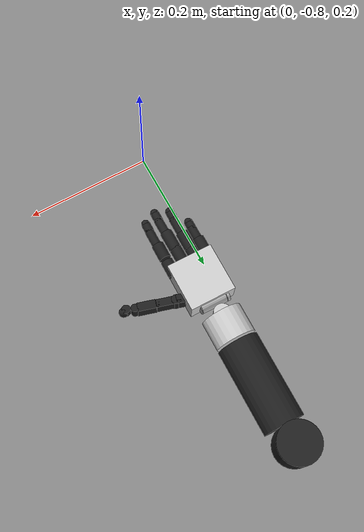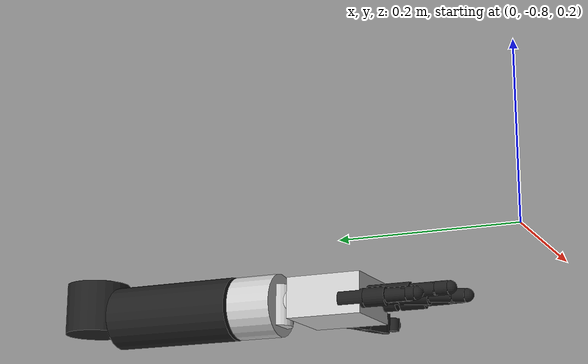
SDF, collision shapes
<?xml version='1.0'?>
<sdf version='1.5'>
  <model name='mpl_right_arm_transradial'>
    <link name='forearm'>
      <pose>0.00660504 -0.294573 0.119123 -1.21334e-13 2.77556e-17 -0.0115373</pose>
      <inertial>
        <pose>-0.000589428 -0.0733139 0.0215526 0 0 0</pose>
        <mass>0.0997005</mass>
        <inertia>
          <ixx>0.0004998</ixx>
          <ixy>-5.83136e-06</ixy>
          <ixz>3.56083e-07</ixz>
          <iyy>0.00010215</iyy>
          <iyz>3.76069e-05</iyz>
          <izz>0.000498862</izz>
        </inertia>
      </inertial>
      <collision name='collision'>
        <pose>0 0 0.02855 0 0 0</pose>
        <geometry>
          <cylinder>
            <radius>0.03567</radius>
            <length>0.0571</length>
          </cylinder>
        </geometry>
        <surface>
          <contact>
            <ode>
              <kp>100000</kp>
              <kd>10</kd>
              <max_vel>0.1</max_vel>
              <min_depth>0.0015</min_depth>
            </ode>
          </contact>
        </surface>
      </collision>
      <collision name='collision_1'>
        <pose>0 -0.10745 0.016 1.5707 0 0</pose>
        <geometry>
          <cylinder>
            <radius>0.035</radius>
            <length>0.148</length>
          </cylinder>
        </geometry>
        <surface>
          <contact>
            <ode>
              <kp>100000</kp>
              <kd>10</kd>
              <max_vel>0.1</max_vel>
              <min_depth>0.0015</min_depth>
            </ode>
          </contact>
        </surface>
      </collision>
      <visual name='visual'>
        <geometry>
          <mesh>
            <uri>model://mpl_right_arm/meshes/forearm.stl</uri>
          </mesh>
        </geometry>
        <material>
          <script>
            <name>Gazebo/FlatBlack</name>
          </script>
        </material>
      </visual>
      <sensor name='forearm_contact_sensor' type='contact'>
        <contact>
          <collision>collision</collision>
          <collision>collision_1</collision>
          <topic>~/forearm/contact</topic>
        </contact>
      </sensor>
    </link>

    <link name='wristy'>
      <pose>0.00449937 -0.479995 0.135123 -1.2164e-13 1.09079e-14 -0.0115373</pose>
      <inertial>
        <pose>-7.08369e-05 -0.0217787 -0.000286168 0 0 0</pose>
        <mass>0.0272932</mass>
        <inertia>
          <ixx>1.77029e-05</ixx>
          <ixy>7.89061e-09</ixy>
          <ixz>4.33867e-09</ixz>
          <iyy>2.46772e-05</iyy>
          <iyz>1.77331e-07</iyz>
          <izz>1.7112e-05</izz>
        </inertia>
      </inertial>
      <collision name='collision'>
        <pose>0 -0.025 0 1.5707 0 0</pose>
        <geometry>
          <cylinder>
            <radius>0.03447</radius>
            <length>0.05</length>
          </cylinder>
        </geometry>
        <surface>
          <contact>
            <ode>
              <kp>100000</kp>
              <kd>10</kd>
              <max_vel>0.1</max_vel>
              <min_depth>0.0015</min_depth>
            </ode>
          </contact>
        </surface>
      </collision>
      <visual name='visual'>
        <geometry>
          <mesh>
            <uri>model://mpl_right_arm/meshes/wristy.stl</uri>
          </mesh>
        </geometry>
        <material>
          <ambient>0.2 0.2 0.2 1</ambient>
          <diffuse>0.8 0.8 0.8 1</diffuse>
          <specular>0.9 0.9 0.9 1</specular>
        </material>
      </visual>
      <sensor name='wristy_contact_sensor' type='contact'>
        <contact>
          <collision>collision</collision>
          <topic>~/wristy/contact</topic>
        </contact>
      </sensor>
    </link>

    <link name='wristx'>
      <pose>0.003916 -0.527636 0.137161 -1.18962e-13 1.21847e-14 -0.0115373</pose>
      <inertial>
        <pose>0.00139174 -0.00975189 -0.00252668 0 0 0</pose>
        <mass>0.010691</mass>
        <inertia>
          <ixx>3.27995e-06</ixx>
          <ixy>-1.50151e-07</ixy>
          <ixz>5.11904e-09</ixz>
          <iyy>4.22942e-06</iyy>
          <iyz>-4.20007e-08</iyz>
          <izz>5.04229e-06</izz>
        </inertia>
      </inertial>
      <collision name='collision'>
        <pose>0 0 -0.00314 0 0 0</pose>
        <geometry>
          <cylinder>
            <radius>0.01473</radius>
            <length>0.04478</length>
          </cylinder>
        </geometry>
        <surface>
          <contact>
            <ode>
              <kp>100000</kp>
              <kd>10</kd>
              <max_vel>0.1</max_vel>
              <min_depth>0.0015</min_depth>
            </ode>
          </contact>
        </surface>
      </collision>
      <collision name='collision_1'>
        <pose>0.02360 -0.02969 -0.00240 0 1.5707 0</pose>
        <geometry>
          <cylinder>
            <radius>0.013175</radius>
            <length>0.005</length>
          </cylinder>
        </geometry>
        <surface>
          <contact>
            <ode>
              <kp>100000</kp>
              <kd>10</kd>
              <max_vel>0.1</max_vel>
              <min_depth>0.0015</min_depth>
            </ode>
          </contact>
        </surface>
      </collision>
      <collision name='collision_2'>
        <pose>-0.02360 -0.02969 -0.00240 0 1.5707 0</pose>
        <geometry>
          <cylinder>
            <radius>0.013175</radius>
            <length>0.005</length>
          </cylinder>
        </geometry>
        <surface>
          <contact>
            <ode>
              <kp>100000</kp>
              <kd>10</kd>
              <max_vel>0.1</max_vel>
              <min_depth>0.0015</min_depth>
            </ode>
          </contact>
        </surface>
      </collision>
      <visual name='visual'>
        <geometry>
          <mesh>
            <uri>model://mpl_right_arm/meshes/wristx.stl</uri>
          </mesh>
        </geometry>
        <material>
          <ambient>0.2 0.2 0.2 1</ambient>
          <diffuse>0.8 0.8 0.8 1</diffuse>
          <specular>0.9 0.9 0.9 1</specular>
        </material>
      </visual>
      <sensor name='wristx_contact_sensor' type='contact'>
        <contact>
          <collision>collision</collision>
          <collision>collision_1</collision>
          <collision>collision_2</collision>
          <topic>~/wristx/contact</topic>
        </contact>
      </sensor>
    </link>

    <link name='wristz'>
      <pose>0.00375708 -0.557636 0.135067 -2.87105e-13 1.42109e-14 -0.0115373</pose>
      <inertial>
        <pose>0.00368152 -0.0358755 0.00265927 0 0 0</pose>
        <mass>0.125889</mass>
        <inertia>
          <ixx>8.18077e-05</ixx>
          <ixy>-9.44149e-06</ixy>
          <ixz>3.88366e-06</ixz>
          <iyy>9.81482e-05</iyy>
          <iyz>-4.84151e-08</iyz>
          <izz>0.000131783</izz>
        </inertia>
      </inertial>
      <collision name='collision'>
        <pose>0.00207 -0.00047 0.00046 1.5707 0 1.5707</pose>
        <geometry>
          <cylinder>
            <radius>0.01411</radius>
            <length>0.04482</length>
          </cylinder>
        </geometry>
        <surface>
          <contact>
            <ode>
              <kp>100000</kp>
              <kd>10</kd>
              <max_vel>0.1</max_vel>
              <min_depth>0.0015</min_depth>
            </ode>
          </contact>
        </surface>
      </collision>
      <collision name='collision_palm'>
        <pose>0.002 -0.03739 0 0 0 0</pose>
        <geometry>
          <box>
            <size>0.07928 0.08316 0.04402</size>
          </box>
        </geometry>
        <surface>
          <contact>
            <ode>
              <kp>100000</kp>
              <kd>100</kd>
              <max_vel>0.1</max_vel>
              <min_depth>0.0015</min_depth>
            </ode>
          </contact>
        </surface>
      </collision>
      <visual name='visual'>
        <geometry>
          <mesh>
            <uri>model://mpl_right_arm/meshes/wristz.stl</uri>
          </mesh>
        </geometry>
        <material>
          <ambient>0.2 0.2 0.2 1</ambient>
          <diffuse>0.8 0.8 0.8 1</diffuse>
          <specular>0.9 0.9 0.9 1</specular>
        </material>
      </visual>
      <visual name='visual_palm'>
        <pose>0.025625 0 0 1.7427e-13 8.3267e-17 -3.1876e-16</pose>
        <geometry>
          <mesh>
            <uri>model://mpl_right_arm/meshes/palm.stl</uri>
          </mesh>
        </geometry>
        <material>
          <script>
            <name>Gazebo/FlatBlack</name>
          </script>
        </material>
      </visual>
      <sensor name='palm_contact_sensor' type='contact'>
        <contact>
          <collision>collision_palm</collision>
          <topic>~/palm/contact</topic>
        </contact>
      </sensor>
    </link>

    <link name='index0'>
      <pose>0.0384854 -0.623842 0.136079 -1.14726e-13 0.174533 -0.0115373</pose>
      <inertial>
        <pose>-0.000142572 -0.00548494 0.000206145 0 0 0</pose>
        <mass>0.00295579</mass>
        <inertia>
          <ixx>4.22375e-07</ixx>
          <ixy>4.23313e-09</ixy>
          <ixz>5.00708e-10</ixz>
          <iyy>1.94048e-07</iyy>
          <iyz>-4.58697e-09</iyz>
          <izz>4.02188e-07</izz>
        </inertia>
      </inertial>
      <collision name='collision'>
        <pose>0 -0.01339 0 1.5707 0 0</pose>
        <geometry>
          <cylinder>
            <length>0.028</length>
            <radius>0.01</radius>
          </cylinder>
        </geometry>
        <surface>
          <contact>
            <ode>
              <kp>100000</kp>
              <kd>10</kd>
              <max_vel>0.1</max_vel>
              <min_depth>0.0015</min_depth>
            </ode>
          </contact>
        </surface>
      </collision>
      <visual name='visual'>
        <geometry>
          <mesh>
            <uri>model://mpl_right_arm/meshes/index0.stl</uri>
          </mesh>
        </geometry>
        <material>
          <script>
            <name>Gazebo/FlatBlack</name>
          </script>
        </material>
      </visual>
      <sensor name='index0_contact_sensor' type='contact'>
        <contact>
          <collision>collision</collision>
          <topic>~/index0/contact</topic>
        </contact>
      </sensor>
    </link>

    <link name='index1'>
      <pose>0.0383394 -0.641841 0.136068 -1.1474e-13 0.174533 -0.0115373</pose>
      <inertial>
        <pose>0.000406487 -0.0213125 0.000655609 0 0 0</pose>
        <mass>0.00478235</mass>
        <inertia>
          <ixx>8.18593e-07</ixx>
          <ixy>-1.2874e-09</ixy>
          <ixz>1.78664e-10</ixz>
          <iyy>3.06547e-07</iyy>
          <iyz>-1.18998e-08</iyz>
          <izz>7.95406e-07</izz>
        </inertia>
      </inertial>
      <collision name='collision'>
        <pose>0 -0.02782 0 1.5707 0 0</pose>
        <geometry>
          <cylinder>
            <radius>0.01</radius>
            <length>0.02781</length>
          </cylinder>
        </geometry>
        <surface>
          <contact>
            <ode>
              <kp>100000</kp>
              <kd>10</kd>
              <max_vel>0.1</max_vel>
              <min_depth>0.0015</min_depth>
            </ode>
          </contact>
        </surface>
      </collision>
      <visual name='visual'>
        <geometry>
          <mesh>
            <uri>model://mpl_right_arm/meshes/index1.stl</uri>
          </mesh>
        </geometry>
        <material>
          <script>
            <name>Gazebo/FlatBlack</name>
          </script>
        </material>
      </visual>
      <sensor name='index1_contact_sensor' type='contact'>
        <contact>
          <collision>collision</collision>
          <topic>~/index1/contact</topic>
        </contact>
      </sensor>
    </link>

    <link name='index2'>
      <pose>0.0389938 -0.685352 0.136372 -1.1445e-13 0.174533 -0.0115373</pose>
      <inertial>
        <pose>-0.000841462 -0.012689 0.000572665 0 0 0</pose>
        <mass>0.00344764</mass>
        <inertia>
          <ixx>3.63785e-07</ixx>
          <ixy>-6.41791e-09</ixy>
          <ixz>7.97765e-10</ixz>
          <iyy>1.07105e-07</iyy>
          <iyz>2.03273e-08</iyz>
          <izz>3.57435e-07</izz>
        </inertia>
      </inertial>
      <collision name='collision'>
        <pose>0 -0.01152 0 1.5707 0 0</pose>
        <geometry>
          <cylinder>
            <length>0.029</length>
            <radius>0.0075</radius>
          </cylinder>
        </geometry>
        <surface>
          <contact>
            <ode>
              <kp>100000</kp>
              <kd>10</kd>
              <max_vel>0.1</max_vel>
              <min_depth>0.0015</min_depth>
            </ode>
          </contact>
        </surface>
      </collision>
      <collision name='collision_1'>
        <pose>0 -0.02502 0 0 0 0</pose>
        <geometry>
          <sphere>
            <radius>0.0075</radius>
          </sphere>
        </geometry>
        <surface>
          <contact>
            <ode>
              <kp>100000</kp>
              <kd>10</kd>
              <max_vel>0.1</max_vel>
              <min_depth>0.0015</min_depth>
            </ode>
          </contact>
        </surface>
      </collision>
      <visual name='visual'>
        <geometry>
          <mesh>
            <uri>model://mpl_right_arm/meshes/index2.stl</uri>
          </mesh>
        </geometry>
        <material>
          <script>
            <name>Gazebo/FlatBlack</name>
          </script>
        </material>
      </visual>
      <sensor name='index2_contact_sensor' type='contact'>
        <contact>
          <collision>collision</collision>
          <collision>collision_1</collision>
          <topic>~/index2/contact</topic>
        </contact>
      </sensor>
    </link>

    <link name='index3'>
      <pose>0.0380858 -0.709843 0.136482 -1.15476e-13 0.174533 -0.0115373</pose>
      <inertial>
        <pose>4.32004e-05 -0.0125318 0.000903476 0 0 0</pose>
        <mass>0.00274415</mass>
        <inertia>
          <ixx>1.09202e-07</ixx>
          <ixy>-3.99165e-12</ixy>
          <ixz>-5.84792e-12</ixz>
          <iyy>7.79728e-08</iyy>
          <iyz>2.77966e-09</iyz>
          <izz>1.19449e-07</izz>
        </inertia>
      </inertial>
      <collision name='collision'>
        <pose>0 -0.00688 0.0001 1.5707 0 0</pose>
        <geometry>
          <cylinder>
            <length>0.01376</length>
            <radius>0.0074</radius>
          </cylinder>
        </geometry>
        <surface>
          <contact>
            <ode>
              <kp>100000</kp>
              <kd>10</kd>
              <max_vel>0.1</max_vel>
              <min_depth>0.0015</min_depth>
            </ode>
          </contact>
        </surface>
      </collision>
      <collision name='collision_1'>
        <pose>0 -0.015 0.0001 0 0 0</pose>
        <geometry>
          <sphere>
            <radius>0.0072</radius>
          </sphere>
        </geometry>
        <surface>
          <contact>
            <ode>
              <kp>100000</kp>
              <kd>10</kd>
              <max_vel>0.1</max_vel>
              <min_depth>0.0015</min_depth>
            </ode>
          </contact>
        </surface>
      </collision>
      <visual name='visual'>
        <geometry>
          <mesh>
            <uri>model://mpl_right_arm/meshes/index3.stl</uri>
          </mesh>
        </geometry>
        <material>
          <script>
            <name>Gazebo/FlatBlack</name>
          </script>
        </material>
      </visual>
      <sensor name='index3_contact_sensor' type='contact'>
        <contact>
          <collision>collision</collision>
          <collision>collision_1</collision>
          <topic>~/index3/contact</topic>
        </contact>
      </sensor>
      <sensor name='index3_imu_sensor' type='imu'>
        <always_on>1</always_on>
        <update_rate>1000</update_rate>
        <imu>
          <noise>
            <type>gaussian</type>
            <rate>
              <mean>0</mean>
              <stddev>0.0002</stddev>
              <bias_mean>7.5e-06</bias_mean>
              <bias_stddev>8e-07</bias_stddev>
            </rate>
            <accel>
              <mean>0</mean>
              <stddev>0.017</stddev>
              <bias_mean>0.1</bias_mean>
              <bias_stddev>0.001</bias_stddev>
            </accel>
          </noise>
        </imu>
      </sensor>
    </link>

    <link name='middle0'>
      <pose>0.0156685 -0.63568 0.140513 0.0872665 1.4183e-14 -0.0115373</pose>
      <inertial>
        <pose>-0.000142567 -0.00548493 0.000206162 0 0 0</pose>
        <mass>0.00295579</mass>
        <inertia>
          <ixx>4.22374e-07</ixx>
          <ixy>4.23312e-09</ixy>
          <ixz>5.00706e-10</ixz>
          <iyy>1.94048e-07</iyy>
          <iyz>-4.58725e-09</iyz>
          <izz>4.02189e-07</izz>
        </inertia>
      </inertial>
      <collision name='collision'>
        <pose>0 -0.01339 0 1.5707 0 0</pose>
        <geometry>
          <cylinder>
            <length>0.028</length>
            <radius>0.01</radius>
          </cylinder>
        </geometry>
        <surface>
          <contact>
            <ode>
              <kp>100000</kp>
              <kd>10</kd>
              <max_vel>0.1</max_vel>
              <min_depth>0.0015</min_depth>
            </ode>
          </contact>
        </surface>
      </collision>
      <visual name='visual'>
        <geometry>
          <mesh>
            <uri>model://mpl_right_arm/meshes/middle0.stl</uri>
          </mesh>
        </geometry>
        <material>
          <script>
            <name>Gazebo/FlatBlack</name>
          </script>
        </material>
      </visual>
      <sensor name='middle0_contact_sensor' type='contact'>
        <contact>
          <collision>collision</collision>
          <topic>~/middle0/contact</topic>
        </contact>
      </sensor>
    </link>

    <link name='middle1'>
      <pose>0.0155242 -0.653612 0.138944 0.0872665 1.43013e-14 -0.0115373</pose>
      <inertial>
        <pose>0.000406411 -0.0213125 0.00065565 0 0 0</pose>
        <mass>0.00478229</mass>
        <inertia>
          <ixx>8.1859e-07</ixx>
          <ixy>-1.28827e-09</ixy>
          <ixz>1.7867e-10</ixz>
          <iyy>3.06545e-07</iyy>
          <iyz>-1.19001e-08</iyz>
          <izz>7.95403e-07</izz>
        </inertia>
      </inertial>
      <collision name='collision'>
        <pose>0 -0.025 0 1.5707 0 0</pose>
        <geometry>
          <cylinder>
            <radius>0.01</radius>
            <length>0.03459</length>
          </cylinder>
        </geometry>
        <surface>
          <contact>
            <ode>
              <kp>100000</kp>
              <kd>10</kd>
              <max_vel>0.1</max_vel>
              <min_depth>0.0015</min_depth>
            </ode>
          </contact>
        </surface>
      </collision>
      <visual name='visual'>
        <geometry>
          <mesh>
            <uri>model://mpl_right_arm/meshes/middle1.stl</uri>
          </mesh>
        </geometry>
        <material>
          <script>
            <name>Gazebo/FlatBlack</name>
          </script>
        </material>
      </visual>
      <sensor name='middle1_contact_sensor' type='contact'>
        <contact>
          <collision>collision</collision>
          <topic>~/middle1/contact</topic>
        </contact>
      </sensor>
    </link>

    <link name='middle2'>
      <pose>0.0161097 -0.696999 0.135651 0.0872665 1.32728e-14 -0.0115373</pose>
      <inertial>
        <pose>-0.000841444 -0.012689 0.00057266 0 0 0</pose>
        <mass>0.00344765</mass>
        <inertia>
          <ixx>3.63785e-07</ixx>
          <ixy>-6.41794e-09</ixy>
          <ixz>7.97197e-10</ixz>
          <iyy>1.07106e-07</iyy>
          <iyz>2.03275e-08</iyz>
          <izz>3.57435e-07</izz>
        </inertia>
      </inertial>
      <collision name='collision'>
        <pose>0 -0.01152 0 1.5707 0 0</pose>
        <geometry>
          <cylinder>
            <length>0.029</length>
            <radius>0.0075</radius>
          </cylinder>
        </geometry>
        <surface>
          <contact>
            <ode>
              <kp>100000</kp>
              <kd>10</kd>
              <max_vel>0.1</max_vel>
              <min_depth>0.0015</min_depth>
            </ode>
          </contact>
        </surface>
      </collision>
      <collision name='collision_1'>
        <pose>0 -0.02302 0 0 0 0</pose>
        <geometry>
          <sphere>
            <radius>0.0075</radius>
          </sphere>
        </geometry>
        <surface>
          <contact>
            <ode>
              <kp>100000</kp>
              <kd>10</kd>
              <max_vel>0.1</max_vel>
              <min_depth>0.0015</min_depth>
            </ode>
          </contact>
        </surface>
      </collision>
      <visual name='visual'>
        <geometry>
          <mesh>
            <uri>model://mpl_right_arm/meshes/middle2.stl</uri>
          </mesh>
        </geometry>
        <material>
          <script>
            <name>Gazebo/FlatBlack</name>
          </script>
        </material>
      </visual>
      <sensor name='middle2_contact_sensor' type='contact'>
        <contact>
          <collision>collision</collision>
          <collision>collision_1</collision>
          <topic>~/middle2/contact</topic>
        </contact>
      </sensor>
    </link>

    <link name='middle3'>
      <pose>0.0151931 -0.721397 0.133515 0.0872665 1.51577e-14 -0.0115373</pose>
      <inertial>
        <pose>4.31236e-05 -0.0125318 0.000903446 0 0 0</pose>
        <mass>0.00274417</mass>
        <inertia>
          <ixx>1.09202e-07</ixx>
          <ixy>-3.78001e-12</ixy>
          <ixz>-5.35395e-12</ixz>
          <iyy>7.79738e-08</iyy>
          <iyz>2.77969e-09</iyz>
          <izz>1.1945e-07</izz>
        </inertia>
      </inertial>
      <collision name='collision'>
        <pose>0 -0.00688 0.0001 1.5707 0 0</pose>
        <geometry>
          <cylinder>
            <length>0.01376</length>
            <radius>0.0074</radius>
          </cylinder>
        </geometry>
        <surface>
          <contact>
            <ode>
              <kp>100000</kp>
              <kd>10</kd>
              <max_vel>0.1</max_vel>
              <min_depth>0.0015</min_depth>
            </ode>
          </contact>
        </surface>
      </collision>
      <collision name='collision_1'>
        <pose>0 -0.015 0.0001 0 0 0</pose>
        <geometry>
          <sphere>
            <radius>0.0072</radius>
          </sphere>
        </geometry>
        <surface>
          <contact>
            <ode>
              <kp>100000</kp>
              <kd>10</kd>
              <max_vel>0.1</max_vel>
              <min_depth>0.0015</min_depth>
            </ode>
          </contact>
        </surface>
      </collision>
      <visual name='visual'>
        <geometry>
          <mesh>
            <uri>model://mpl_right_arm/meshes/middle3.stl</uri>
          </mesh>
        </geometry>
        <material>
          <script>
            <name>Gazebo/FlatBlack</name>
          </script>
        </material>
      </visual>
      <sensor name='middle3_contact_sensor' type='contact'>
        <contact>
          <collision>collision</collision>
          <collision>collision_1</collision>
          <topic>~/middle3/contact</topic>
        </contact>
      </sensor>
      <sensor name='middle3_imu_sensor' type='imu'>
        <always_on>1</always_on>
        <update_rate>1000</update_rate>
        <imu>
          <noise>
            <type>gaussian</type>
            <rate>
              <mean>0</mean>
              <stddev>0.0002</stddev>
              <bias_mean>7.5e-06</bias_mean>
              <bias_stddev>8e-07</bias_stddev>
            </rate>
            <accel>
              <mean>0</mean>
              <stddev>0.017</stddev>
              <bias_mean>0.1</bias_mean>
              <bias_stddev>0.001</bias_stddev>
            </accel>
          </noise>
        </imu>
      </sensor>
    </link>

    <link name='pinky0'>
      <pose>-0.0275009 -0.61268 0.129428 -1.14942e-13 -0.174533 -0.0115373</pose>
      <inertial>
        <pose>-0.000142559 -0.00538484 0.000206147 0 0 0</pose>
        <mass>0.00295579</mass>
        <inertia>
          <ixx>4.22375e-07</ixx>
          <ixy>4.23309e-09</ixy>
          <ixz>5.0054e-10</ixz>
          <iyy>1.94048e-07</iyy>
          <iyz>-4.58693e-09</iyz>
          <izz>4.02189e-07</izz>
        </inertia>
      </inertial>
      <collision name='collision'>
        <pose>0 -0.01339 0 1.5707 0 0</pose>
        <geometry>
          <cylinder>
            <length>0.028</length>
            <radius>0.01</radius>
          </cylinder>
        </geometry>
        <surface>
          <contact>
            <ode>
              <kp>100000</kp>
              <kd>10</kd>
              <max_vel>0.1</max_vel>
              <min_depth>0.0015</min_depth>
            </ode>
          </contact>
        </surface>
      </collision>
      <visual name='visual'>
        <geometry>
          <mesh>
            <uri>model://mpl_right_arm/meshes/pinky0.stl</uri>
          </mesh>
        </geometry>
        <material>
          <script>
            <name>Gazebo/FlatBlack</name>
          </script>
        </material>
      </visual>
      <sensor name='pinky0_contact_sensor' type='contact'>
        <contact>
          <collision>collision</collision>
          <topic>~/pinky0/contact</topic>
        </contact>
      </sensor>
    </link>

    <link name='pinky1'>
      <pose>-0.0276458 -0.630579 0.129439 -1.14943e-13 -0.174533 -0.0115373</pose>
      <inertial>
        <pose>0.000458624 -0.0160478 0.000924735 0 0 0</pose>
        <mass>0.0034099</mass>
        <inertia>
          <ixx>4.03282e-07</ixx>
          <ixy>-1.80186e-09</ixy>
          <ixz>-1.42049e-09</ixz>
          <iyy>2.20449e-07</iyy>
          <iyz>-9.60174e-09</iyz>
          <izz>3.83588e-07</izz>
        </inertia>
      </inertial>
      <collision name='collision'>
        <pose>0 -0.02082 0 1.5707 0 0</pose>
        <geometry>
          <cylinder>
            <radius>0.01</radius>
            <length>0.02381</length>
          </cylinder>
        </geometry>
        <surface>
          <contact>
            <ode>
              <kp>100000</kp>
              <kd>10</kd>
              <max_vel>0.1</max_vel>
              <min_depth>0.0015</min_depth>
            </ode>
          </contact>
        </surface>
      </collision>
      <visual name='visual'>
        <geometry>
          <mesh>
            <uri>model://mpl_right_arm/meshes/pinky1.stl</uri>
          </mesh>
        </geometry>
        <material>
          <script>
            <name>Gazebo/FlatBlack</name>
          </script>
        </material>
      </visual>
      <sensor name='pinky1_contact_sensor' type='contact'>
        <contact>
          <collision>collision</collision>
          <topic>~/pinky0/contact</topic>
        </contact>
      </sensor>
    </link>

    <link name='pinky2'>
      <pose>-0.0275441 -0.663582 0.130032 -1.14415e-13 -0.174533 -0.0115373</pose>
      <inertial>
        <pose>-0.000270832 -0.00914628 0.000738493 0 0 0</pose>
        <mass>0.00250622</mass>
        <inertia>
          <ixx>1.78939e-07</ixx>
          <ixy>-3.88097e-09</ixy>
          <ixz>3.24897e-10</ixz>
          <iyy>7.59883e-08</iyy>
          <iyz>1.17825e-08</iyz>
          <izz>1.74551e-07</izz>
        </inertia>
      </inertial>
      <collision name='collision'>
        <pose>0 -0.0076 0 1.5707 0 0</pose>
        <geometry>
          <cylinder>
            <length>0.029</length>
            <radius>0.0075</radius>
          </cylinder>
        </geometry>
        <surface>
          <contact>
            <ode>
              <kp>100000</kp>
              <kd>10</kd>
              <max_vel>0.1</max_vel>
              <min_depth>0.0015</min_depth>
            </ode>
          </contact>
        </surface>
      </collision>
      <visual name='visual'>
        <geometry>
          <mesh>
            <uri>model://mpl_right_arm/meshes/pinky2.stl</uri>
          </mesh>
        </geometry>
        <material>
          <script>
            <name>Gazebo/FlatBlack</name>
          </script>
        </material>
      </visual>
      <sensor name='pinky2_contact_sensor' type='contact'>
        <contact>
          <collision>collision</collision>
          <topic>~/pinky2/contact</topic>
        </contact>
      </sensor>
    </link>

    <link name='pinky3'>
      <pose>-0.0277931 -0.681081 0.130023 -1.14622e-13 -0.174533 -0.0115373</pose>
      <inertial>
        <pose>3.85026e-05 -0.0125047 0.000912295 0 0 0</pose>
        <mass>0.00273265</mass>
        <inertia>
          <ixx>1.08629e-07</ixx>
          <ixy>2.84178e-11</ixy>
          <ixz>1.88869e-11</ixz>
          <iyy>7.78965e-08</iyy>
          <iyz>2.64344e-09</iyz>
          <izz>1.18971e-07</izz>
        </inertia>
      </inertial>
      <collision name='collision'>
        <pose>0 -0.00688 0.0001 1.5707 0 0</pose>
        <geometry>
          <cylinder>
            <length>0.01376</length>
            <radius>0.0074</radius>
          </cylinder>
        </geometry>
        <surface>
          <contact>
            <ode>
              <kp>100000</kp>
              <kd>10</kd>
              <max_vel>0.1</max_vel>
              <min_depth>0.0015</min_depth>
            </ode>
          </contact>
        </surface>
      </collision>
      <collision name='collision_1'>
        <pose>0 -0.015 0.0001 0 0 0</pose>
        <geometry>
          <sphere>
            <radius>0.0072</radius>
          </sphere>
        </geometry>
        <surface>
          <contact>
            <ode>
              <kp>100000</kp>
              <kd>10</kd>
              <max_vel>0.1</max_vel>
              <min_depth>0.0015</min_depth>
            </ode>
          </contact>
        </surface>
      </collision>
      <visual name='visual'>
        <geometry>
          <mesh>
            <uri>model://mpl_right_arm/meshes/pinky3.stl</uri>
          </mesh>
        </geometry>
        <material>
          <script>
            <name>Gazebo/FlatBlack</name>
          </script>
        </material>
      </visual>
      <sensor name='pinky3_contact_sensor' type='contact'>
        <contact>
          <collision>collision</collision>
          <collision>collision_1</collision>
          <topic>~/pinky3/contact</topic>
        </contact>
      </sensor>
      <sensor name='pinky3_imu_sensor' type='imu'>
        <always_on>1</always_on>
        <update_rate>1000</update_rate>
        <imu>
          <noise>
            <type>gaussian</type>
            <rate>
              <mean>0</mean>
              <stddev>0.0002</stddev>
              <bias_mean>7.5e-06</bias_mean>
              <bias_stddev>8e-07</bias_stddev>
            </rate>
            <accel>
              <mean>0</mean>
              <stddev>0.017</stddev>
              <bias_mean>0.1</bias_mean>
              <bias_stddev>0.001</bias_stddev>
            </accel>
          </noise>
        </imu>
      </sensor>
    </link>

    <link name='ring0'>
      <pose>-0.00687963 -0.624218 0.136579 -1.14553e-13 -0.174533 -0.0115373</pose>
      <inertial>
        <pose>-0.000142559 -0.00548494 0.000206147 0 -0 0</pose>
        <mass>0.00295579</mass>
        <inertia>
          <ixx>4.22375e-07</ixx>
          <ixy>4.23309e-09</ixy>
          <ixz>5.00535e-10</ixz>
          <iyy>1.94048e-07</iyy>
          <iyz>-4.58693e-09</iyz>
          <izz>4.02189e-07</izz>
        </inertia>
      </inertial>
      <collision name='collision'>
        <pose>0 -0.01339 0 1.5707 0 0</pose>
        <geometry>
          <cylinder>
            <length>0.028</length>
            <radius>0.01</radius>
          </cylinder>
        </geometry>
        <surface>
          <contact>
            <ode>
              <kp>100000</kp>
              <kd>10</kd>
              <max_vel>0.1</max_vel>
              <min_depth>0.0015</min_depth>
            </ode>
          </contact>
        </surface>
      </collision>
      <visual name='visual'>
        <geometry>
          <mesh>
            <uri>model://mpl_right_arm/meshes/ring0.stl</uri>
          </mesh>
        </geometry>
        <material>
          <script>
            <name>Gazebo/FlatBlack</name>
          </script>
        </material>
      </visual>
      <sensor name='ring0_contact_sensor' type='contact'>
        <contact>
          <collision>collision</collision>
          <topic>~/ring0/contact</topic>
        </contact>
      </sensor>
    </link>

    <link name='ring1'>
      <pose>-0.00702565 -0.642218 0.13659 -1.14538e-13 -0.174533 -0.0115373</pose>
      <inertial>
        <pose>0.000406447 -0.0213125 0.00065563 0 0 0</pose>
        <mass>0.00478232</mass>
        <inertia>
          <ixx>8.18592e-07</ixx>
          <ixy>-1.28783e-09</ixy>
          <ixz>1.78814e-10</ixz>
          <iyy>3.06546e-07</iyy>
          <iyz>-1.19e-08</iyz>
          <izz>7.95405e-07</izz>
        </inertia>
      </inertial>
      <collision name='collision'>
        <pose>0 -0.02505 0 1.5707 0 0</pose>
        <geometry>
          <cylinder>
            <radius>0.01</radius>
            <length>0.03095</length>
          </cylinder>
        </geometry>
        <surface>
          <contact>
            <ode>
              <kp>100000</kp>
              <kd>10</kd>
              <max_vel>0.1</max_vel>
              <min_depth>0.0015</min_depth>
            </ode>
          </contact>
        </surface>
      </collision>
      <visual name='visual'>
        <geometry>
          <mesh>
            <uri>model://mpl_right_arm/meshes/ring1.stl</uri>
          </mesh>
        </geometry>
        <material>
          <script>
            <name>Gazebo/FlatBlack</name>
          </script>
        </material>
      </visual>
      <sensor name='ring1_contact_sensor' type='contact'>
        <contact>
          <collision>collision</collision>
          <topic>~/ring1/contact</topic>
        </contact>
      </sensor>
    </link>

    <link name='ring2'>
      <pose>-0.0065449 -0.685726 0.137271 -1.14828e-13 -0.174533 -0.0115373</pose>
      <inertial>
        <pose>-0.000841518 -0.012689 0.000572674 0 0 0</pose>
        <mass>0.00344767</mass>
        <inertia>
          <ixx>3.63785e-07</ixx>
          <ixy>-6.41744e-09</ixy>
          <ixz>7.98585e-10</ixz>
          <iyy>1.07107e-07</iyy>
          <iyz>2.03271e-08</iyz>
          <izz>3.57437e-07</izz>
        </inertia>
      </inertial>
      <collision name='collision'>
        <pose>0 -0.01152 0 1.5707 0 0</pose>
        <geometry>
          <cylinder>
            <length>0.029</length>
            <radius>0.0075</radius>
          </cylinder>
        </geometry>
        <surface>
          <contact>
            <ode>
              <kp>100000</kp>
              <kd>10</kd>
              <max_vel>0.1</max_vel>
              <min_depth>0.0015</min_depth>
            </ode>
          </contact>
        </surface>
      </collision>
      <collision name='collision_1'>
        <pose>0 -0.02302 0 0 0 0</pose>
        <geometry>
          <sphere>
            <radius>0.0075</radius>
          </sphere>
        </geometry>
        <surface>
          <contact>
            <ode>
              <kp>100000</kp>
              <kd>10</kd>
              <max_vel>0.1</max_vel>
              <min_depth>0.0015</min_depth>
            </ode>
          </contact>
        </surface>
      </collision>
      <visual name='visual'>
        <geometry>
          <mesh>
            <uri>model://mpl_right_arm/meshes/ring2.stl</uri>
          </mesh>
        </geometry>
        <material>
          <script>
            <name>Gazebo/FlatBlack</name>
          </script>
        </material>
      </visual>
      <sensor name='ring2_contact_sensor' type='contact'>
        <contact>
          <collision>collision</collision>
          <topic>~/ring2/contact</topic>
        </contact>
      </sensor>
    </link>

    <link name='ring3'>
      <pose>-0.00745287 -0.710217 0.13716 -1.14821e-13 -0.174533 -0.0115373</pose>
      <inertial>
        <pose>4.31973e-05 -0.0125318 0.000903457 0 0 0</pose>
        <mass>0.00274416</mass>
        <inertia>
          <ixx>1.09202e-07</ixx>
          <ixy>-3.99392e-12</ixy>
          <ixz>-5.71287e-12</ixz>
          <iyy>7.79732e-08</iyy>
          <iyz>2.77976e-09</iyz>
          <izz>1.1945e-07</izz>
        </inertia>
      </inertial>
      <collision name='collision'>
        <pose>0 -0.00688 0.0001 1.5707 0 0</pose>
        <geometry>
          <cylinder>
            <length>0.01376</length>
            <radius>0.0074</radius>
          </cylinder>
        </geometry>
        <surface>
          <contact>
            <ode>
              <kp>100000</kp>
              <kd>10</kd>
              <max_vel>0.1</max_vel>
              <min_depth>0.0015</min_depth>
            </ode>
          </contact>
        </surface>
      </collision>
      <collision name='collision_1'>
        <pose>0 -0.015 0.0001 0 0 0</pose>
        <geometry>
          <sphere>
            <radius>0.0072</radius>
          </sphere>
        </geometry>
        <surface>
          <contact>
            <ode>
              <kp>100000</kp>
              <kd>10</kd>
              <max_vel>0.1</max_vel>
              <min_depth>0.0015</min_depth>
            </ode>
          </contact>
        </surface>
      </collision>
      <visual name='visual'>
        <geometry>
          <mesh>
            <uri>model://mpl_right_arm/meshes/ring3.stl</uri>
          </mesh>
        </geometry>
        <material>
          <script>
            <name>Gazebo/FlatBlack</name>
          </script>
        </material>
      </visual>
      <sensor name='ring3_contact_sensor' type='contact'>
        <contact>
          <collision>collision</collision>
          <collision>collision_1</collision>
          <topic>~/ring3/contact</topic>
        </contact>
      </sensor>
      <sensor name='ring3_imu_sensor' type='imu'>
        <always_on>1</always_on>
        <update_rate>1000</update_rate>
        <imu>
          <noise>
            <type>gaussian</type>
            <rate>
              <mean>0</mean>
              <stddev>0.0002</stddev>
              <bias_mean>7.5e-06</bias_mean>
              <bias_stddev>8e-07</bias_stddev>
            </rate>
            <accel>
              <mean>0</mean>
              <stddev>0.017</stddev>
              <bias_mean>0.1</bias_mean>
              <bias_stddev>0.001</bias_stddev>
            </accel>
          </noise>
        </imu>
      </sensor>
    </link>

    <link name='thumb0'>
      <pose>0.0374985 -0.578725 0.124974 0.0873761 -0.0305803 -0.276903</pose>
      <inertial>
        <pose>0.00863339 -0.000156884 -0.000945846 0 0 0</pose>
        <mass>0.00336696</mass>
        <inertia>
          <ixx>2.44266e-07</ixx>
          <ixy>-1.56849e-08</ixy>
          <ixz>4.05807e-08</ixz>
          <iyy>4.49559e-07</iyy>
          <iyz>3.27736e-09</iyz>
          <izz>4.40718e-07</izz>
        </inertia>
      </inertial>
      <collision name='collision'>
        <pose>0.0200 -0.001 0.0015 0 0 0</pose>
        <geometry>
          <cylinder>
            <length>0.023</length>
            <radius>0.008221</radius>
          </cylinder>
        </geometry>
        <surface>
          <contact>
            <ode>
              <kp>100000</kp>
              <kd>10</kd>
              <max_vel>0.1</max_vel>
              <min_depth>0.0015</min_depth>
            </ode>
          </contact>
        </surface>
      </collision>
      <collision name='collision_1'>
        <pose>0.01 -.001 0.0015 0 0 0</pose>
        <geometry>
          <box>
            <size>0.0202 0.0155 0.023</size>
          </box>
        </geometry>
        <surface>
          <contact>
            <ode>
              <kp>100000</kp>
              <kd>10</kd>
              <max_vel>0.1</max_vel>
              <min_depth>0.0015</min_depth>
            </ode>
          </contact>
        </surface>
      </collision>
      <visual name='visual'>
        <geometry>
          <mesh>
            <uri>model://mpl_right_arm/meshes/thumb0.stl</uri>
          </mesh>
        </geometry>
        <material>
          <script>
            <name>Gazebo/FlatBlack</name>
          </script>
        </material>
      </visual>
      <sensor name='thumb0_contact_sensor' type='contact'>
        <contact>
          <collision>collision</collision>
          <collision>collision_1</collision>
          <topic>~/thumb0/contact</topic>
        </contact>
      </sensor>
    </link>

    <link name='thumb1'>
      <pose>0.057306 -0.585356 0.126981 0.0873761 -0.0305803 -0.276903</pose>
      <inertial>
        <pose>0.019024 0.000361131 -0.000186763 0 0 0</pose>
        <mass>0.00596213</mass>
        <inertia>
          <ixx>5.36423e-07</ixx>
          <ixy>-7.9696e-09</ixy>
          <ixz>-3.66761e-08</ixz>
          <iyy>9.87852e-07</iyy>
          <iyz>-1.23551e-09</iyz>
          <izz>9.4184e-07</izz>
        </inertia>
      </inertial>
      <collision name='collision'>
        <pose>-0.00056 0.00 -0.00025 0 0 0</pose>
        <geometry>
          <cylinder>
            <length>0.0188</length>
            <radius>0.00688</radius>
          </cylinder>
        </geometry>
        <surface>
          <contact>
            <ode>
              <kp>100000</kp>
              <kd>10</kd>
              <max_vel>0.1</max_vel>
              <min_depth>0.0015</min_depth>
            </ode>
          </contact>
        </surface>
      </collision>
      <collision name='collision_1'>
        <pose>0.03381 0 0 0 0 0</pose>
        <geometry>
          <cylinder>
            <length>0.02176</length>
            <radius>0.00688</radius>
          </cylinder>
        </geometry>
        <surface>
          <contact>
            <ode>
              <kp>100000</kp>
              <kd>10</kd>
              <max_vel>0.1</max_vel>
              <min_depth>0.0015</min_depth>
            </ode>
          </contact>
        </surface>
      </collision>
      <collision name='collision_2'>
        <pose>0.01613 0 0 0 0 0</pose>
        <geometry>
          <box>
            <size>0.03273 0.01376 0.02176</size>
          </box>
        </geometry>
        <surface>
          <contact>
            <ode>
              <kp>100000</kp>
              <kd>10</kd>
              <max_vel>0.1</max_vel>
              <min_depth>0.0015</min_depth>
            </ode>
          </contact>
        </surface>
      </collision>
      <visual name='visual'>
        <geometry>
          <mesh>
            <uri>model://mpl_right_arm/meshes/thumb1.stl</uri>
          </mesh>
        </geometry>
        <material>
          <script>
            <name>Gazebo/FlatBlack</name>
          </script>
        </material>
      </visual>
      <sensor name='thumb1_contact_sensor' type='contact'>
        <contact>
          <collision>collision</collision>
          <collision>collision_1</collision>
          <collision>collision_2</collision>
          <topic>~/thumb1/contact</topic>
        </contact>
      </sensor>
    </link>

    <link name='thumb2'>
      <pose>0.0895543 -0.594453 0.127266 0.0873761 -0.0305803 -0.276903</pose>
      <inertial>
        <pose>0.0188965 0.000375725 0.00065381 0 0 0</pose>
        <mass>0.00599792</mass>
        <inertia>
          <ixx>5.17385e-07</ixx>
          <ixy>-1.08936e-08</ixy>
          <ixz>-3.49348e-08</ixz>
          <iyy>9.9639e-07</iyy>
          <iyz>5.15558e-10</iyz>
          <izz>9.6228e-07</izz>
        </inertia>
      </inertial>
      <collision name='collision'>
        <pose>0.03415 0 0.001 0 0 0</pose>
        <geometry>
          <cylinder>
            <radius>0.00679</radius>
            <length>0.02236</length>
          </cylinder>
        </geometry>
        <surface>
          <contact>
            <ode>
              <kp>100000</kp>
              <kd>10</kd>
              <max_vel>0.1</max_vel>
              <min_depth>0.0015</min_depth>
            </ode>
          </contact>
        </surface>
      </collision>
      <collision name='collision_1'>
        <pose>0.01493 0 0.001 0 0 0</pose>
        <geometry>
          <box>
            <size>0.03095 0.015 0.02236</size>
          </box>
        </geometry>
        <surface>
          <contact>
            <ode>
              <kp>100000</kp>
              <kd>10</kd>
              <max_vel>0.1</max_vel>
              <min_depth>0.0015</min_depth>
            </ode>
          </contact>
        </surface>
      </collision>
      <visual name='visual'>
        <geometry>
          <mesh>
            <uri>model://mpl_right_arm/meshes/thumb2.stl</uri>
          </mesh>
        </geometry>
        <material>
          <script>
            <name>Gazebo/FlatBlack</name>
          </script>
        </material>
      </visual>
      <sensor name='thumb2_contact_sensor' type='contact'>
        <contact>
          <collision>collision</collision>
          <collision>collision_1</collision>
          <topic>~/thumb2/contact</topic>
        </contact>
      </sensor>
    </link>

    <link name='thumb3'>
      <pose>0.121705 -0.603689 0.129371 0.0873761 -0.0305803 -0.276903</pose>
      <inertial>
        <pose>0.0123437 -0.0014554 0 0 0 0</pose>
        <mass>0.00274415</mass>
        <inertia>
          <ixx>1.73183661e-7</ixx>
          <ixy>0</ixy>
          <ixz>0</ixz>
          <iyy>3.66498619e-7</iyy>
          <iyz>2.77966e-09</iyz>
          <izz>3.59291321e-7</izz>
        </inertia>
      </inertial>
      <collision name='collision'>
        <pose>0.01507 -0.00219 0.0001 0 0 0</pose>
        <geometry>
          <cylinder>
            <length>0.01476</length>
            <radius>0.0074</radius>
          </cylinder>
        </geometry>
        <surface>
          <contact>
            <ode>
              <kp>100000</kp>
              <kd>10</kd>
              <max_vel>0.1</max_vel>
              <min_depth>0.0015</min_depth>
            </ode>
          </contact>
        </surface>
      </collision>
      <collision name='collision_1'>
        <pose>0.0195 0 0 0 0 0</pose>
        <geometry>
          <sphere>
            <radius>0.008</radius>
          </sphere>
        </geometry>
        <surface>
          <contact>
            <ode>
              <kp>100000</kp>
              <kd>10</kd>
              <max_vel>0.1</max_vel>
              <min_depth>0.0015</min_depth>
            </ode>
          </contact>
        </surface>
      </collision>
      <visual name='visual'>
        <geometry>
          <mesh>
            <uri>model://mpl_right_arm/meshes/thumb3.stl</uri>
          </mesh>
        </geometry>
        <material>
          <script>
            <name>Gazebo/FlatBlack</name>
          </script>
        </material>
      </visual>
      <sensor name='thumb3_contact_sensor' type='contact'>
        <contact>
          <collision>collision</collision>
          <collision>collision_1</collision>
          <topic>~/thumb3/contact</topic>
        </contact>
      </sensor>
      <sensor name='thumb3_distal_imu_sensor' type='imu'>
        <always_on>1</always_on>
        <update_rate>1000</update_rate>
        <imu>
          <noise>
            <type>gaussian</type>
            <rate>
              <mean>0</mean>
              <stddev>0.0002</stddev>
              <bias_mean>7.5e-06</bias_mean>
              <bias_stddev>8e-07</bias_stddev>
            </rate>
            <accel>
              <mean>0</mean>
              <stddev>0.017</stddev>
              <bias_mean>0.1</bias_mean>
              <bias_stddev>0.001</bias_stddev>
            </accel>
          </noise>
        </imu>
      </sensor>
    </link>

    <joint name='forearm' type='revolute'>
      <child>forearm</child>
      <parent></parent>
      <axis>
        <xyz>1.42759e-15 1.21326e-13 1</xyz>
        <limit>
          <lower>0</lower>
          <upper>2.61</upper>
          <effort>10000</effort>
          <velocity>0.5</velocity>
        </limit>
        <dynamics>
          <damping>5</damping>
        </dynamics>
        <use_parent_model_frame>1</use_parent_model_frame>
      </axis>
      <physics>
        <provide_feedback>1</provide_feedback>
        <ode>
          <implicit_spring_damper>1</implicit_spring_damper>
          <cfm_damping>1</cfm_damping>
          <limit>
            <cfm>0.01</cfm>
            <erp>0</erp>
          </limit>
        </ode>
      </physics>
    </joint>

    <joint name='wristy' type='revolute'>
      <child>wristy</child>
      <parent>forearm</parent>
      <axis>
        <xyz>0.011537 0.999933 -1.2164e-13</xyz>
        <limit>
          <lower>-1.57</lower>
          <upper>1.57</upper>
          <effort>10000</effort>
          <velocity>0.5</velocity>
        </limit>
        <dynamics>
          <damping>5</damping>
        </dynamics>
        <use_parent_model_frame>1</use_parent_model_frame>
      </axis>
      <physics>
        <provide_feedback>1</provide_feedback>
        <ode>
          <implicit_spring_damper>1</implicit_spring_damper>
          <cfm_damping>1</cfm_damping>
          <limit>
            <cfm>0</cfm>
            <erp>0.2</erp>
          </limit>
        </ode>
      </physics>
    </joint>

    <joint name='wristx' type='revolute'>
      <child>wristx</child>
      <parent>wristy</parent>
      <axis>
        <xyz>-1.35564e-14 -1.18814e-13 -1</xyz>
        <limit>
          <lower>-0.261</lower>
          <upper>0.785</upper>
          <effort>10000</effort>
          <velocity>0.5</velocity>
        </limit>
        <dynamics>
          <damping>5</damping>
        </dynamics>
        <use_parent_model_frame>1</use_parent_model_frame>
      </axis>
      <physics>
        <provide_feedback>1</provide_feedback>
        <ode>
          <implicit_spring_damper>1</implicit_spring_damper>
          <cfm_damping>1</cfm_damping>
          <limit>
            <cfm>0</cfm>
            <erp>0.2</erp>
          </limit>
        </ode>
      </physics>
    </joint>

    <joint name='wristz' type='revolute'>
      <child>wristz</child>
      <parent>wristx</parent>
      <axis>
        <xyz>0.999933 -0.011537 -1.42109e-14</xyz>
        <limit>
          <lower>-1.04</lower>
          <upper>1.04</upper>
          <effort>10000</effort>
          <velocity>0.5</velocity>
        </limit>
        <dynamics>
          <damping>5</damping>
        </dynamics>
        <use_parent_model_frame>1</use_parent_model_frame>
      </axis>
      <physics>
        <provide_feedback>1</provide_feedback>
        <ode>
          <implicit_spring_damper>1</implicit_spring_damper>
          <cfm_damping>1</cfm_damping>
          <limit>
            <cfm>0</cfm>
            <erp>0.2</erp>
          </limit>
        </ode>
      </physics>
    </joint>

    <joint name='index0' type='revolute'>
      <child>index0</child>
      <parent>wristz</parent>
      <axis>
        <xyz>-0.173637 0.00200338 -0.984808</xyz>
        <limit>
          <lower>-0.345</lower>
          <upper>0</upper>
          <effort>10000</effort>
          <velocity>0.5</velocity>
        </limit>
        <dynamics>
          <damping>0.8</damping>
        </dynamics>
        <use_parent_model_frame>1</use_parent_model_frame>
      </axis>
      <physics>
        <provide_feedback>1</provide_feedback>
        <ode>
          <implicit_spring_damper>1</implicit_spring_damper>
          <cfm_damping>1</cfm_damping>
          <limit>
            <cfm>0</cfm>
            <erp>0.2</erp>
          </limit>
        </ode>
      </physics>
    </joint>

    <joint name='index1' type='revolute'>
      <child>index1</child>
      <parent>index0</parent>
      <axis>
        <xyz>0.984742 -0.0113618 -0.173648</xyz>
        <limit>
          <lower>-0.785</lower>
          <upper>1.57</upper>
          <effort>10000</effort>
          <velocity>0.5</velocity>
        </limit>
        <dynamics>
          <damping>0.8</damping>
        </dynamics>
        <use_parent_model_frame>1</use_parent_model_frame>
      </axis>
      <physics>
        <provide_feedback>1</provide_feedback>
        <ode>
          <implicit_spring_damper>1</implicit_spring_damper>
          <cfm_damping>1</cfm_damping>
          <limit>
            <cfm>0</cfm>
            <erp>0.2</erp>
          </limit>
        </ode>
      </physics>
    </joint>

    <joint name='index2' type='revolute'>
      <child>index2</child>
      <parent>index1</parent>
      <axis>
        <xyz>0.984742 -0.0113618 -0.173648</xyz>
        <limit>
          <lower>0</lower>
          <upper>1.72</upper>
          <effort>10000</effort>
          <velocity>0.5</velocity>
        </limit>
        <dynamics>
          <damping>0.8</damping>
        </dynamics>
        <use_parent_model_frame>1</use_parent_model_frame>
      </axis>
      <physics>
        <provide_feedback>1</provide_feedback>
        <ode>
          <implicit_spring_damper>1</implicit_spring_damper>
          <cfm_damping>1</cfm_damping>
          <limit>
            <cfm>0</cfm>
            <erp>0.2</erp>
          </limit>
        </ode>
      </physics>
    </joint>

    <joint name='index3' type='revolute'>
      <child>index3</child>
      <parent>index2</parent>
      <axis>
        <xyz>0.984742 -0.0113618 -0.173648</xyz>
        <limit>
          <lower>0</lower>
          <upper>1.38</upper>
          <effort>10000</effort>
          <velocity>0.5</velocity>
        </limit>
        <dynamics>
          <damping>0.8</damping>
        </dynamics>
        <use_parent_model_frame>1</use_parent_model_frame>
      </axis>
      <physics>
        <provide_feedback>1</provide_feedback>
        <ode>
          <implicit_spring_damper>1</implicit_spring_damper>
          <cfm_damping>1</cfm_damping>
          <limit>
            <cfm>0</cfm>
            <erp>0.2</erp>
          </limit>
        </ode>
      </physics>
    </joint>

    <joint name='middle0' type='revolute'>
      <child>middle0</child>
      <parent>wristz</parent>
      <axis>
        <xyz>0.00100552 0.0871499 -0.996195</xyz>
        <limit>
          <lower>0</lower>
          <upper>0</upper>
          <effort>10000</effort>
          <velocity>0.5</velocity>
        </limit>
        <dynamics>
          <damping>0.8</damping>
        </dynamics>
        <use_parent_model_frame>1</use_parent_model_frame>
      </axis>
      <physics>
        <provide_feedback>1</provide_feedback>
        <ode>
          <implicit_spring_damper>1</implicit_spring_damper>
          <cfm_damping>1</cfm_damping>
          <limit>
            <cfm>0</cfm>
            <erp>0.2</erp>
          </limit>
        </ode>
      </physics>
    </joint>

    <joint name='middle1' type='revolute'>
      <child>middle1</child>
      <parent>middle0</parent>
      <axis>
        <xyz>0.999933 -0.011537 -1.43013e-14</xyz>
        <limit>
          <lower>-0.785</lower>
          <upper>1.57</upper>
          <effort>10000</effort>
          <velocity>0.5</velocity>
        </limit>
        <dynamics>
          <damping>0.8</damping>
        </dynamics>
        <use_parent_model_frame>1</use_parent_model_frame>
      </axis>
      <physics>
        <provide_feedback>1</provide_feedback>
        <ode>
          <implicit_spring_damper>1</implicit_spring_damper>
          <cfm_damping>1</cfm_damping>
          <limit>
            <cfm>0</cfm>
            <erp>0.2</erp>
          </limit>
        </ode>
      </physics>
    </joint>

    <joint name='middle2' type='revolute'>
      <child>middle2</child>
      <parent>middle1</parent>
      <axis>
        <xyz>0.999933 -0.011537 -1.32727e-14</xyz>
        <limit>
          <lower>0</lower>
          <upper>1.73</upper>
          <effort>10000</effort>
          <velocity>0.5</velocity>
        </limit>
        <dynamics>
          <damping>0.8</damping>
        </dynamics>
        <use_parent_model_frame>1</use_parent_model_frame>
      </axis>
      <physics>
        <provide_feedback>1</provide_feedback>
        <ode>
          <implicit_spring_damper>1</implicit_spring_damper>
          <cfm_damping>1</cfm_damping>
          <limit>
            <cfm>0</cfm>
            <erp>0.2</erp>
          </limit>
        </ode>
      </physics>
    </joint>

    <joint name='middle3' type='revolute'>
      <child>middle3</child>
      <parent>middle2</parent>
      <axis>
        <xyz>0.999933 -0.011537 -1.51577e-14</xyz>
        <limit>
          <lower>0</lower>
          <upper>1.38</upper>
          <effort>10000</effort>
          <velocity>0.5</velocity>
        </limit>
        <dynamics>
          <damping>0.8</damping>
        </dynamics>
        <use_parent_model_frame>1</use_parent_model_frame>
      </axis>
      <physics>
        <provide_feedback>1</provide_feedback>
        <ode>
          <implicit_spring_damper>1</implicit_spring_damper>
          <cfm_damping>1</cfm_damping>
          <limit>
            <cfm>0</cfm>
            <erp>0.2</erp>
          </limit>
        </ode>
      </physics>
    </joint>

    <joint name='pinky0' type='revolute'>
      <child>pinky0</child>
      <parent>wristz</parent>
      <axis>
        <xyz>0.173637 -0.00200338 -0.984808</xyz>
        <limit>
          <lower>0</lower>
          <upper>0.345</upper>
          <effort>10000</effort>
          <velocity>0.5</velocity>
        </limit>
        <dynamics>
          <damping>0.8</damping>
        </dynamics>
        <use_parent_model_frame>1</use_parent_model_frame>
      </axis>
      <physics>
        <provide_feedback>1</provide_feedback>
        <ode>
          <implicit_spring_damper>1</implicit_spring_damper>
          <cfm_damping>1</cfm_damping>
          <limit>
            <cfm>0</cfm>
            <erp>0.2</erp>
          </limit>
        </ode>
      </physics>
    </joint>

    <joint name='pinky1' type='revolute'>
      <child>pinky1</child>
      <parent>pinky0</parent>
      <axis>
        <xyz>0.984742 -0.0113618 0.173648</xyz>
        <limit>
          <lower>-0.785</lower>
          <upper>1.57</upper>
          <effort>10000</effort>
          <velocity>0.5</velocity>
        </limit>
        <dynamics>
          <damping>0.8</damping>
        </dynamics>
        <use_parent_model_frame>1</use_parent_model_frame>
      </axis>
      <physics>
        <provide_feedback>1</provide_feedback>
        <ode>
          <implicit_spring_damper>1</implicit_spring_damper>
          <cfm_damping>1</cfm_damping>
          <limit>
            <cfm>0</cfm>
            <erp>0.2</erp>
          </limit>
        </ode>
      </physics>
    </joint>

    <joint name='pinky2' type='revolute'>
      <child>pinky2</child>
      <parent>pinky1</parent>
      <axis>
        <xyz>0.984742 -0.0113618 0.173648</xyz>
        <limit>
          <lower>0</lower>
          <upper>1.72</upper>
          <effort>10000</effort>
          <velocity>0.5</velocity>
        </limit>
        <dynamics>
          <damping>0.8</damping>
        </dynamics>
        <use_parent_model_frame>1</use_parent_model_frame>
      </axis>
      <physics>
        <provide_feedback>1</provide_feedback>
        <ode>
          <implicit_spring_damper>1</implicit_spring_damper>
          <cfm_damping>1</cfm_damping>
          <limit>
            <cfm>0</cfm>
            <erp>0.2</erp>
          </limit>
        </ode>
      </physics>
    </joint>

    <joint name='pinky3' type='revolute'>
      <child>pinky3</child>
      <parent>pinky2</parent>
      <axis>
        <xyz>0.984742 -0.0113618 0.173648</xyz>
        <limit>
          <lower>0</lower>
          <upper>1.38</upper>
          <effort>10000</effort>
          <velocity>0.5</velocity>
        </limit>
        <dynamics>
          <damping>0.8</damping>
        </dynamics>
        <use_parent_model_frame>1</use_parent_model_frame>
      </axis>
      <physics>
        <provide_feedback>1</provide_feedback>
        <ode>
          <implicit_spring_damper>1</implicit_spring_damper>
          <cfm_damping>1</cfm_damping>
          <limit>
            <cfm>0</cfm>
            <erp>0.2</erp>
          </limit>
        </ode>
      </physics>
    </joint>

    <joint name='ring0' type='revolute'>
      <child>ring0</child>
      <parent>wristz</parent>
      <axis>
        <xyz>0.173637 -0.00200338 -0.984808</xyz>
        <limit>
          <lower>0</lower>
          <upper>0.345</upper>
          <effort>10000</effort>
          <velocity>0.5</velocity>
        </limit>
        <dynamics>
          <damping>0.8</damping>
        </dynamics>
        <use_parent_model_frame>1</use_parent_model_frame>
      </axis>
      <physics>
        <provide_feedback>1</provide_feedback>
        <ode>
          <implicit_spring_damper>1</implicit_spring_damper>
          <cfm_damping>1</cfm_damping>
          <limit>
            <cfm>0</cfm>
            <erp>0.2</erp>
          </limit>
        </ode>
      </physics>
    </joint>

    <joint name='ring1' type='revolute'>
      <child>ring1</child>
      <parent>ring0</parent>
      <axis>
        <xyz>0.984742 -0.0113618 0.173648</xyz>
        <limit>
          <lower>-0.785</lower>
          <upper>1.57</upper>
          <effort>10000</effort>
          <velocity>0.5</velocity>
        </limit>
        <dynamics>
          <damping>0.8</damping>
        </dynamics>
        <use_parent_model_frame>1</use_parent_model_frame>
      </axis>
      <physics>
        <provide_feedback>1</provide_feedback>
        <ode>
          <implicit_spring_damper>1</implicit_spring_damper>
          <cfm_damping>1</cfm_damping>
          <limit>
            <cfm>0</cfm>
            <erp>0.2</erp>
          </limit>
        </ode>
      </physics>
    </joint>

    <joint name='ring2' type='revolute'>
      <child>ring2</child>
      <parent>ring1</parent>
      <axis>
        <xyz>0.984742 -0.0113618 0.173648</xyz>
        <limit>
          <lower>0</lower>
          <upper>1.72</upper>
          <effort>10000</effort>
          <velocity>0.5</velocity>
        </limit>
        <dynamics>
          <damping>0.8</damping>
        </dynamics>
        <use_parent_model_frame>1</use_parent_model_frame>
      </axis>
      <physics>
        <provide_feedback>1</provide_feedback>
        <ode>
          <implicit_spring_damper>1</implicit_spring_damper>
          <cfm_damping>1</cfm_damping>
          <limit>
            <cfm>0</cfm>
            <erp>0.2</erp>
          </limit>
        </ode>
      </physics>
    </joint>

    <joint name='ring3' type='revolute'>
      <child>ring3</child>
      <parent>ring2</parent>
      <axis>
        <xyz>0.984742 -0.0113618 0.173648</xyz>
        <limit>
          <lower>0</lower>
          <upper>1.38</upper>
          <effort>10000</effort>
          <velocity>0.5</velocity>
        </limit>
        <dynamics>
          <damping>0.8</damping>
        </dynamics>
        <use_parent_model_frame>1</use_parent_model_frame>
      </axis>
      <physics>
        <provide_feedback>1</provide_feedback>
        <ode>
          <implicit_spring_damper>1</implicit_spring_damper>
          <cfm_damping>1</cfm_damping>
          <limit>
            <cfm>0</cfm>
            <erp>0.2</erp>
          </limit>
        </ode>
      </physics>
    </joint>

    <joint name='thumb0' type='revolute'>
      <child>thumb0</child>
      <parent>wristz</parent>
      <axis>
        <xyz>0.269769 0.958967 0.0872241</xyz>
        <limit>
          <lower>0</lower>
          <upper>2.07</upper>
          <effort>10000</effort>
          <velocity>0.5</velocity>
        </limit>
        <dynamics>
          <damping>0.8</damping>
        </dynamics>
        <use_parent_model_frame>1</use_parent_model_frame>
      </axis>
      <physics>
        <provide_feedback>1</provide_feedback>
        <ode>
          <implicit_spring_damper>1</implicit_spring_damper>
          <cfm_damping>1</cfm_damping>
          <limit>
            <cfm>0</cfm>
            <erp>0.2</erp>
          </limit>
        </ode>
      </physics>
    </joint>

    <joint name='thumb1' type='revolute'>
      <child>thumb1</child>
      <parent>thumb0</parent>
      <axis>
        <xyz>0.0531549 0.0756139 -0.995719</xyz>
        <limit>
          <lower>0</lower>
          <upper>1.03</upper>
          <effort>10000</effort>
          <velocity>0.5</velocity>
        </limit>
        <dynamics>
          <damping>0.8</damping>
        </dynamics>
        <use_parent_model_frame>1</use_parent_model_frame>
      </axis>
      <physics>
        <provide_feedback>1</provide_feedback>
        <ode>
          <implicit_spring_damper>1</implicit_spring_damper>
          <cfm_damping>1</cfm_damping>
          <limit>
            <cfm>0</cfm>
            <erp>0.2</erp>
          </limit>
        </ode>
      </physics>
    </joint>

    <joint name='thumb2' type='revolute'>
      <child>thumb2</child>
      <parent>thumb1</parent>
      <axis>
        <xyz>0.0531549 0.0756139 -0.995719</xyz>
        <limit>
          <lower>0</lower>
          <upper>1.03</upper>
          <effort>10000</effort>
          <velocity>0.5</velocity>
        </limit>
        <dynamics>
          <damping>0.8</damping>
        </dynamics>
        <use_parent_model_frame>1</use_parent_model_frame>
      </axis>
      <physics>
        <provide_feedback>1</provide_feedback>
        <ode>
          <implicit_spring_damper>1</implicit_spring_damper>
          <cfm_damping>1</cfm_damping>
          <limit>
            <cfm>0</cfm>
            <erp>0.2</erp>
          </limit>
        </ode>
      </physics>
    </joint>

    <joint name='thumb3' type='revolute'>
      <child>thumb3</child>
      <parent>thumb2</parent>
      <axis>
        <xyz>0.0531549 0.0756139 -0.995719</xyz>
        <limit>
          <lower>-0.819</lower>
          <upper>1.28</upper>
          <effort>10000</effort>
          <velocity>0.5</velocity>
        </limit>
        <dynamics>
          <damping>0.8</damping>
        </dynamics>
        <use_parent_model_frame>1</use_parent_model_frame>
      </axis>
      <physics>
        <provide_feedback>1</provide_feedback>
        <ode>
          <implicit_spring_damper>1</implicit_spring_damper>
          <cfm_damping>1</cfm_damping>
          <limit>
            <cfm>0</cfm>
            <erp>0.2</erp>
          </limit>
        </ode>
      </physics>

    </joint>

  </model>
</sdf>
